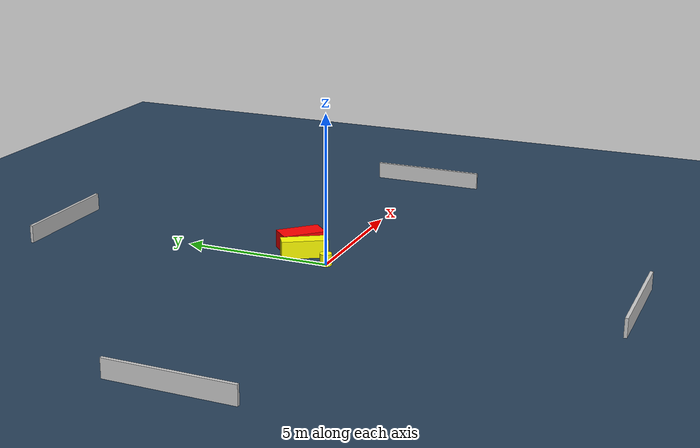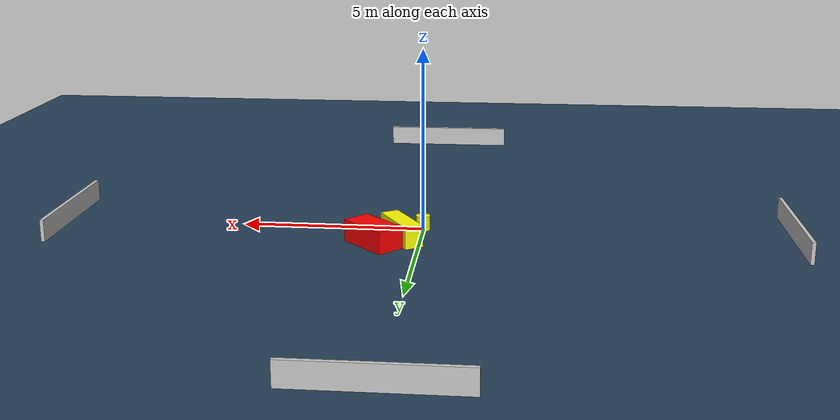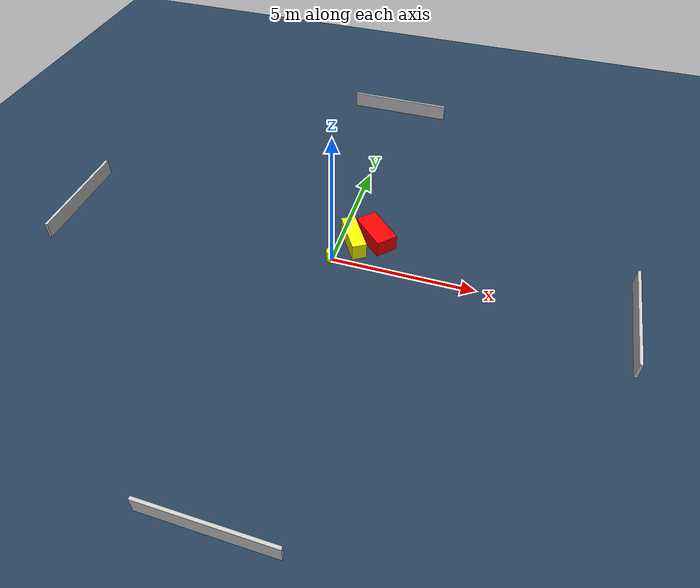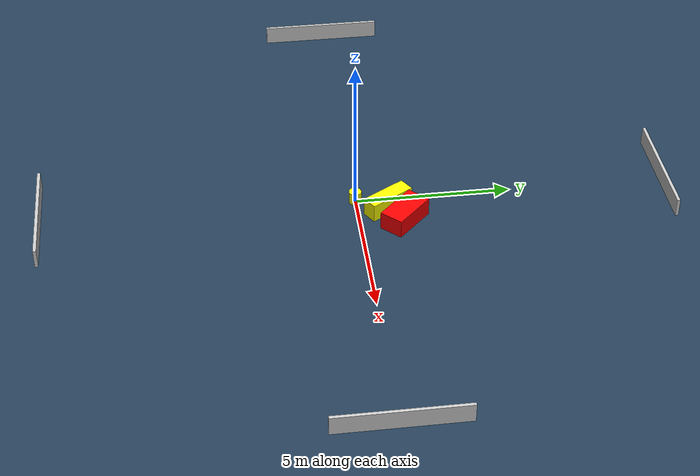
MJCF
<?xml version="1.0" ?>
<mujoco model="generated_environment">
  <option timestep="0.01" integrator="RK4" cone="elliptic"/>
  <default>
    <geom density="1"/>
  </default>
  <asset>
    <texture builtin="gradient" height="3072" name="skybox" rgb1="0.3 0.5 0.7" rgb2="0 0 0" type="skybox" width="512"/>
    <texture builtin="checker" height="300" name="groundplane" rgb1="0.2 0.3 0.4" rgb2="0.1 0.2 0.3" type="2d" width="300"/>
    <material name="groundplane" reflectance="0.2" texrepeat="5 5" texture="groundplane"/>
  </asset>
  <worldbody>
    <light dir="0 0 -1" directional="true" pos="0 0 1.5"/>
    <geom condim="3" friction="0.5 0.005 0.001" material="groundplane" name="floor" pos="0 0 0" size="0 0 0.05" type="plane"/>
    <body name="walls">
      <geom name="wall_1" condim="4" pos="-10.0 0.0 0.3" rgba="0.800000011920929 0.800000011920929 0.800000011920929 1.0" size="0.05 2.0 0.3" type="box"/>
      <geom name="wall_2" condim="4" pos="10.0 0.0 0.3" rgba="0.800000011920929 0.800000011920929 0.800000011920929 1.0" size="0.05 2.0 0.3" type="box"/>
      <geom name="wall_3" condim="4" pos="0.0 -10.0 0.3" rgba="0.800000011920929 0.800000011920929 0.800000011920929 1.0" size="2.0 0.05 0.3" type="box"/>
      <geom name="wall_4" condim="4" pos="0.0 10.0 0.3" rgba="0.800000011920929 0.800000011920929 0.800000011920929 1.0" size="2.0 0.05 0.3" type="box"/>
    </body>
    <body name="robot">
      <joint name="joint_x" type="slide" pos="0 0 0" axis="1 0 0"/>
      <joint name="joint_y" type="slide" pos="0 0 0" axis="0 1 0"/>
      <geom name="robot" type="cylinder" pos="0.0 0.0 0.2" size="0.2 0.2 0.0" mass="5.0" friction="1.0 0.005 0.0001" condim="4" rgba="1.0 1.0 0.0 1.0"/>
    </body>
    <body name="obstacle_1_movable">
      <geom name="obstacle_1_movable" condim="4" pos="0.48977305799277976 0.9845882451551327 0.3" euler="0 0 301.5561810021095" friction="0.0 0.005 0.001" rgba="1.0 1.0 0.0 1.0" size="0.7715957703737368 0.2571601911216541 0.3" type="box" mass="0.1"/>
      <joint type="free"/>
    </body>
    <body name="obstacle_2_static">
      <geom name="obstacle_2_static" condim="4" pos="1.1923178190090897 1.4216293567275364 0.3" euler="0 0 315.70967814949984" friction="0.0 0.005 0.001" rgba="1.0 0.0 0.0 1.0" size="0.7469145168981774 0.39292232598548105 0.3" type="box"/>
    </body>
  </worldbody>
  <actuator>
    <motor name="actuator_x" joint="joint_x" gear="1" ctrlrange="-1 1"/>
    <motor name="actuator_y" joint="joint_y" gear="1" ctrlrange="-1 1"/>
  </actuator>
</mujoco>
